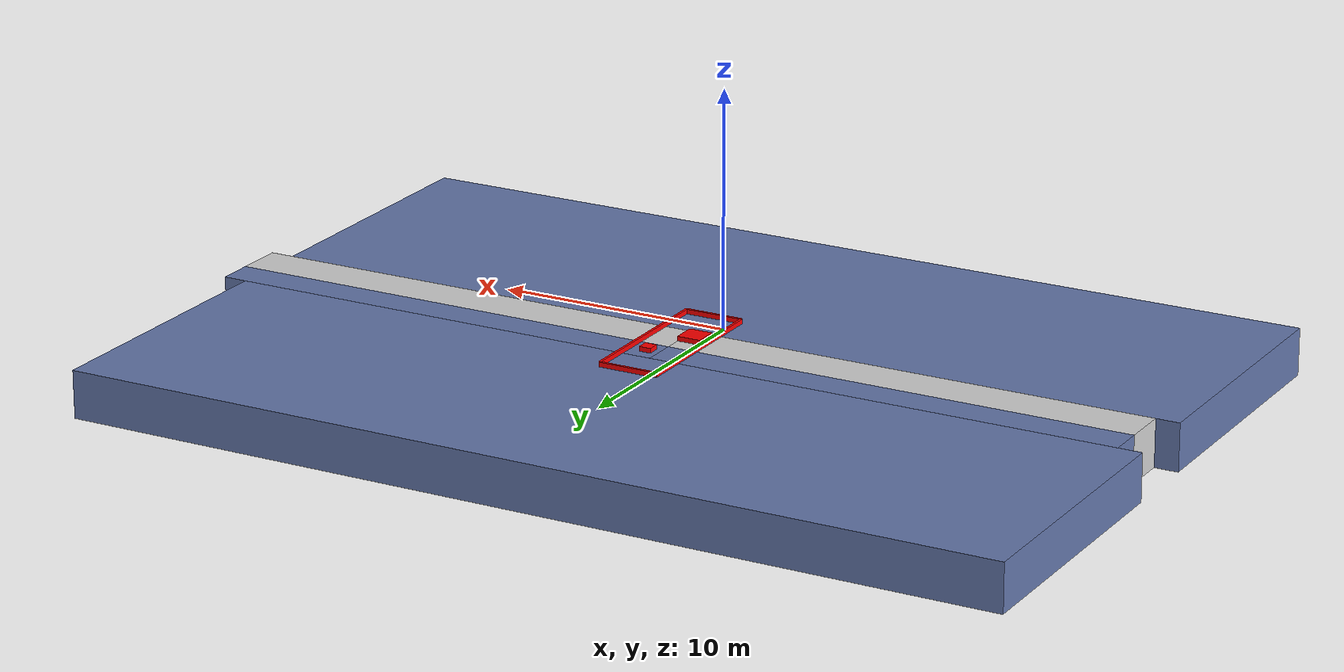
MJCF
<mujoco model="friction_floor_midpatch">
    <compiler angle="radian"/>
    <asset>
        <texture name='a' builtin="gradient" height="100" rgb1="1 1 1" rgb2="0 0 0" type="skybox" width="100"/>
        <texture name="texplane0" type="2d" builtin="checker" rgb1="0.0 0.0 0.36" rgb2="0.79 .94 .99" width="100"
                 height="100" mark="cross" markrgb=".8 .8 .8"/>
        <texture name="texplane1" type="2d" builtin="checker" rgb1=".52 .08 0" rgb2="1 .85 .84" width="100" height="100"
                 mark="cross" markrgb=".8 .8 .8"/>
        <texture name="texplane2" type="2d" builtin="checker" rgb1="0.0 0.0 0.36" rgb2="0.79 .94 .99" width="100"
                 height="100" mark="cross" markrgb=".8 .8 .8"/>
        <texture name="texplane3" type="2d" builtin="checker" rgb1="0 0 0" rgb2="0.8 0.0 0.8" width="100" height="100"
                 mark="cross" markrgb=".8 .8 .8"/>
        <texture name="texplane4" type="2d" builtin="flat" rgb1="0.1215686275 0.4470588235 0.6" width="100"
                 height="100"/>
        <texture name="texplane5" type="2d" builtin="checker" rgb1="1.0 1.0 1.0" rgb2="0.66 0.66 0.66" width="100"
                 height="100"/>
        <material name="matplane0" reflectance="0.2" texture="texplane0" texrepeat="1 1" texuniform="true"/>
        <material name="matplane1" reflectance="0.2" texture="texplane1" texrepeat="1 1" texuniform="true"/>
        <material name="matplane2" reflectance="0.2" texture="texplane2" texrepeat="1 1" texuniform="true"/>
        <material name="matplane3" reflectance="0.2" texture="texplane3" texrepeat="1 1" texuniform="true"/>
        <material name="matplane4" reflectance="0.2" texture="texplane4" texrepeat="1 1" texuniform="true"/>
        <material name="matplane5" reflectance="0.2" texture="texplane5" texrepeat="1 1" texuniform="true"/>
    </asset>
    <visual>
        <headlight ambient="0.6 0.6 0.6" diffuse="0.5 0.5 0.5" specular="0.2 0.2 0.2"/>
        <map znear="0.001"/>
    </visual>
    <worldbody>
        <!-- Floor XY -->
        <geom contype="1" friction="1 0.0 0.01" name="floor07" pos="0 -5.25 -1" size="20 6 1" euler="0 0 0" type="box"
              material="matplane0" condim="6"/>

        <geom contype="1" friction="0.025 0.0 0.0001" name="floor06" pos="-9 1.75 -1" size="10 1 1" euler="0 0 0" type="box"
              material="matplane5" condim="6"/>
        <geom contype="1" friction="0.025 0.0 0.0001" name="floor05" pos="11 1.75 -1" size="10 1 1" euler="0 0 0" type="box"
              material="matplane5" condim="6"/>

        <geom contype="1" friction="1 0.0 0.01" name="floor01" pos="-9 3.5 -1" size="10 .75 1" euler="0 0 0" type="box"
              material="matplane0" condim="6"/>
        <geom contype="1" friction="1 0.0 0.01" name="floor02" pos="11 3.5 -1" size="10 .75 1" euler="0 0 0" type="box"
              material="matplane0" condim="6"/>

        <geom contype="1" friction="1 0.0 0.01" name="floor03" pos="0 10.25 -1" size="20 6 1" euler="0 0 0" type="box"
              material="matplane0" condim="6"/>
        <body name="obstacle_obstacle_0">
            <geom name="obstacle_obstacle_0" type="box" pos="0.5 1.5 0.1" euler="0.0 0.0 0.0" size="0.5 0.5 0.1" rgba="1.0 0.0 0.0 1"/>
      	</body>
		<body name="obstacle_obstacle_1">
			<geom name="obstacle_obstacle_1" type="box" pos="1.5 3.5 0.1" euler="0.0 0.0 0.0" size="0.25 0.25 0.1" rgba="1.0 0.0 0.0 1"/>
		</body>
		<body name="obstacle_wall_down">
			<geom name="obstacle_wall_down" type="box" pos="1 -1 0.1" euler="0.0 0.0 0.0" size="1.25 0.05 0.1" rgba="1.0 0.0 0.0 1"/>
		</body>
		<body name="obstacle_wall_up">
			<geom name="obstacle_wall_up" type="box" pos="1 6 0.1" euler="0.0 0.0 0.0" size="1.25 0.05 0.1" rgba="1.0 0.0 0.0 1"/>
		</body>
		<body name="obstacle_wall_left">
			<geom name="obstacle_wall_left" type="box" pos="-.25 2.5 0.1" euler="0.0 0.0 0.0" size="0.05 3.5 0.1" rgba="1.0 0.0 0.0 1"/>
		</body>
		<body name="obstacle_wall_right">
			<geom name="obstacle_wall_right" type="box" pos="2.25 2.5 0.1" euler="0.0 0.0 0.0" size="0.05 3.5 0.1" rgba="1.0 0.0 0.0 1"/>
		</body>
    </worldbody>
</mujoco>
